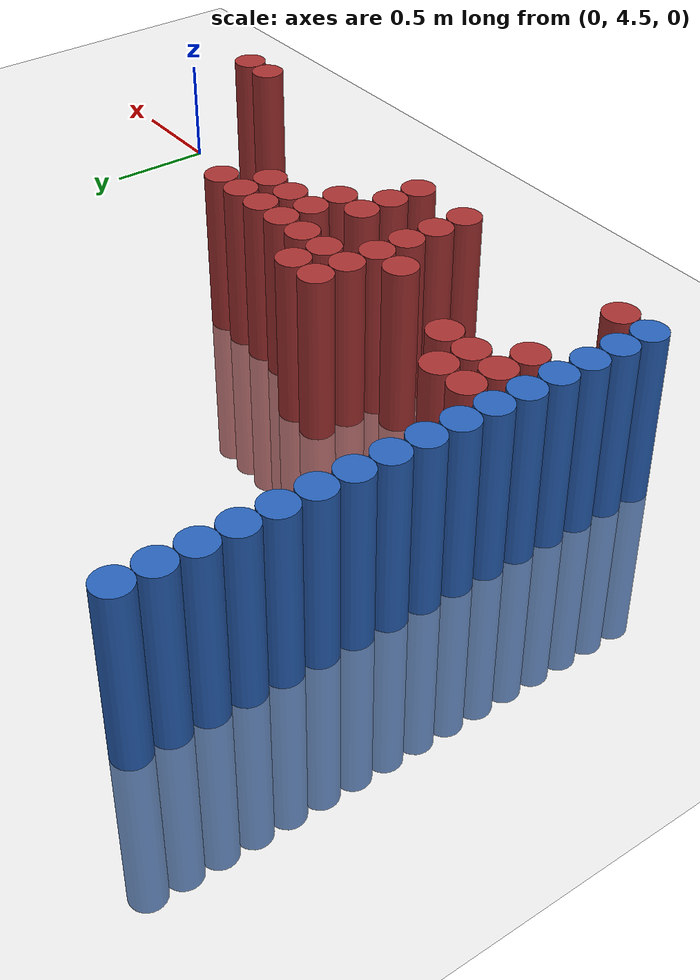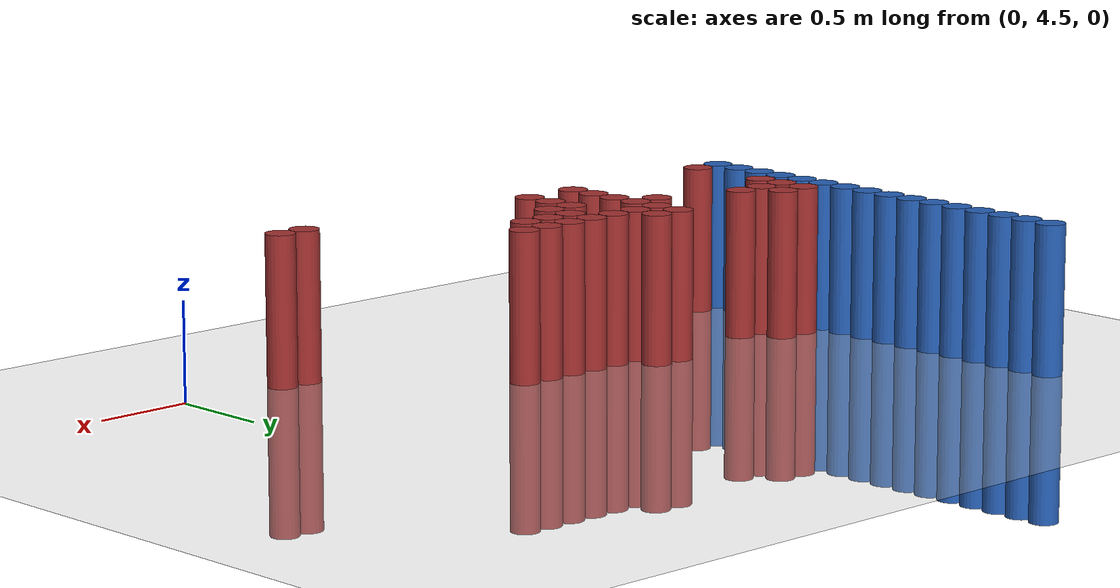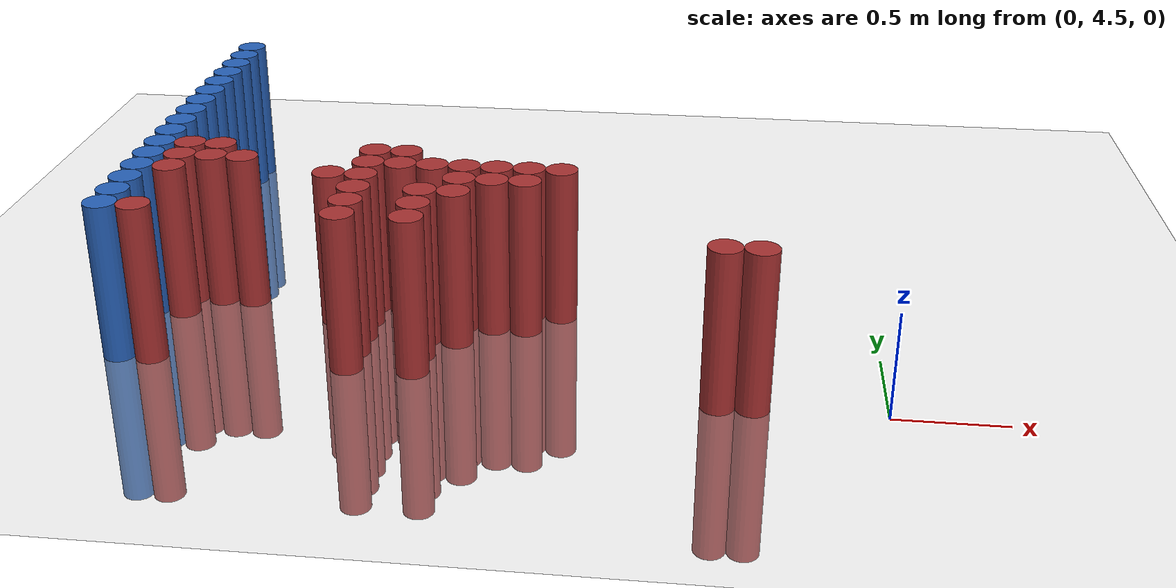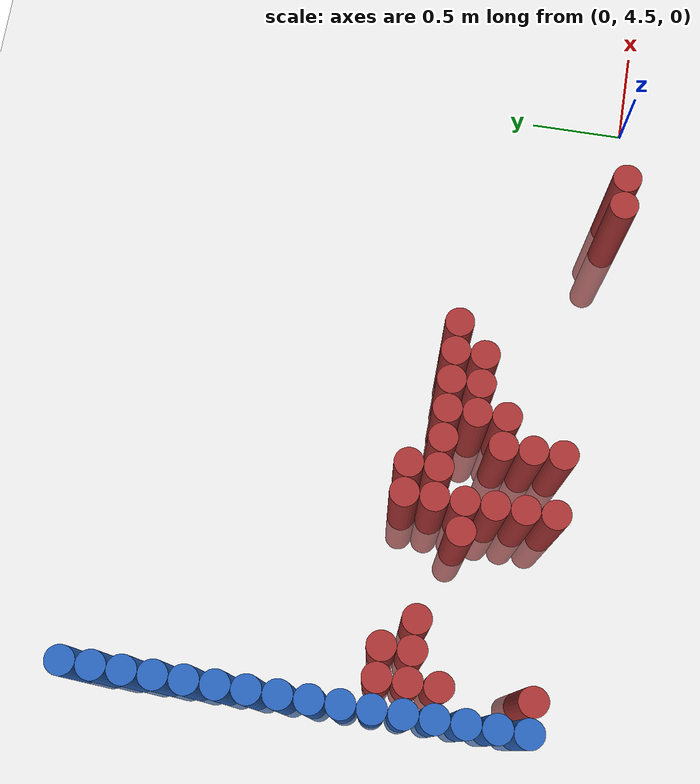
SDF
<sdf version="1.6">
 <world name="default">
  <model name="ground_plane">
   <static>1</static>
   <link name="link">
    <collision name="collision">
     <geometry><plane><normal>0 0 1</normal><size>100 100</size></plane></geometry>
     <surface><friction><ode><mu>100</mu><mu2>50</mu2></ode></friction></surface>
    </collision>
    <visual name="visual">
     <cast_shadows>0</cast_shadows>
     <geometry><plane><normal>0 0 1</normal><size>100 100</size></plane></geometry>
     <material>
      <script><uri>file://media/materials/scripts/gazebo.material</uri><name>Gazebo/Grey</name></script>
     </material>
    </visual>
   </link>
  </model>
  <model name="unit_cylinder_177">
   <static>1</static>
   <pose>-3.425000 4.675000 0.000000 0.000000 0.000000 0.000000</pose>
   <link name="link">
    <inertial>
     <mass>1</mass>
     <inertia><ixx>0.145833</ixx><ixy>0</ixy><ixz>0</ixz><iyy>0.145833</iyy><iyz>0</iyz><izz>0.125</izz></inertia>
    </inertial>
    <collision name="collision">
     <geometry><cylinder><radius>0.075000</radius><length>1.5</length></cylinder></geometry>
    </collision>
    <visual name="visual">
     <geometry><cylinder><radius>0.075000</radius><length>1.5</length></cylinder></geometry>
     <material>
      <ambient>0.152000 0.379000 0.720000 1</ambient>
      <diffuse>0.152000 0.379000 0.720000 1</diffuse>
     </material>
     <material>
      <script><name>Gazebo/Grey</name><uri>file://media/materials/scripts/gazebo.material</uri></script>
     </material>
    </visual>
   </link>
  </model>
  <model name="unit_cylinder_179">
   <static>1</static>
   <pose>-3.425000 4.825000 0.000000 0.000000 0.000000 0.000000</pose>
   <link name="link">
    <inertial>
     <mass>1</mass>
     <inertia><ixx>0.145833</ixx><ixy>0</ixy><ixz>0</ixz><iyy>0.145833</iyy><iyz>0</iyz><izz>0.125</izz></inertia>
    </inertial>
    <collision name="collision">
     <geometry><cylinder><radius>0.075000</radius><length>1.5</length></cylinder></geometry>
    </collision>
    <visual name="visual">
     <geometry><cylinder><radius>0.075000</radius><length>1.5</length></cylinder></geometry>
     <material>
      <ambient>0.152000 0.379000 0.720000 1</ambient>
      <diffuse>0.152000 0.379000 0.720000 1</diffuse>
     </material>
     <material>
      <script><name>Gazebo/Grey</name><uri>file://media/materials/scripts/gazebo.material</uri></script>
     </material>
    </visual>
   </link>
  </model>
  <model name="unit_cylinder_181">
   <static>1</static>
   <pose>-3.425000 4.975000 0.000000 0.000000 0.000000 0.000000</pose>
   <link name="link">
    <inertial>
     <mass>1</mass>
     <inertia><ixx>0.145833</ixx><ixy>0</ixy><ixz>0</ixz><iyy>0.145833</iyy><iyz>0</iyz><izz>0.125</izz></inertia>
    </inertial>
    <collision name="collision">
     <geometry><cylinder><radius>0.075000</radius><length>1.5</length></cylinder></geometry>
    </collision>
    <visual name="visual">
     <geometry><cylinder><radius>0.075000</radius><length>1.5</length></cylinder></geometry>
     <material>
      <ambient>0.152000 0.379000 0.720000 1</ambient>
      <diffuse>0.152000 0.379000 0.720000 1</diffuse>
     </material>
     <material>
      <script><name>Gazebo/Grey</name><uri>file://media/materials/scripts/gazebo.material</uri></script>
     </material>
    </visual>
   </link>
  </model>
  <model name="unit_cylinder_183">
   <static>1</static>
   <pose>-3.425000 5.125000 0.000000 0.000000 0.000000 0.000000</pose>
   <link name="link">
    <inertial>
     <mass>1</mass>
     <inertia><ixx>0.145833</ixx><ixy>0</ixy><ixz>0</ixz><iyy>0.145833</iyy><iyz>0</iyz><izz>0.125</izz></inertia>
    </inertial>
    <collision name="collision">
     <geometry><cylinder><radius>0.075000</radius><length>1.5</length></cylinder></geometry>
    </collision>
    <visual name="visual">
     <geometry><cylinder><radius>0.075000</radius><length>1.5</length></cylinder></geometry>
     <material>
      <ambient>0.152000 0.379000 0.720000 1</ambient>
      <diffuse>0.152000 0.379000 0.720000 1</diffuse>
     </material>
     <material>
      <script><name>Gazebo/Grey</name><uri>file://media/materials/scripts/gazebo.material</uri></script>
     </material>
    </visual>
   </link>
  </model>
  <model name="unit_cylinder_185">
   <static>1</static>
   <pose>-3.425000 5.275000 0.000000 0.000000 0.000000 0.000000</pose>
   <link name="link">
    <inertial>
     <mass>1</mass>
     <inertia><ixx>0.145833</ixx><ixy>0</ixy><ixz>0</ixz><iyy>0.145833</iyy><iyz>0</iyz><izz>0.125</izz></inertia>
    </inertial>
    <collision name="collision">
     <geometry><cylinder><radius>0.075000</radius><length>1.5</length></cylinder></geometry>
    </collision>
    <visual name="visual">
     <geometry><cylinder><radius>0.075000</radius><length>1.5</length></cylinder></geometry>
     <material>
      <ambient>0.152000 0.379000 0.720000 1</ambient>
      <diffuse>0.152000 0.379000 0.720000 1</diffuse>
     </material>
     <material>
      <script><name>Gazebo/Grey</name><uri>file://media/materials/scripts/gazebo.material</uri></script>
     </material>
    </visual>
   </link>
  </model>
  <model name="unit_cylinder_187">
   <static>1</static>
   <pose>-3.425000 5.425000 0.000000 0.000000 0.000000 0.000000</pose>
   <link name="link">
    <inertial>
     <mass>1</mass>
     <inertia><ixx>0.145833</ixx><ixy>0</ixy><ixz>0</ixz><iyy>0.145833</iyy><iyz>0</iyz><izz>0.125</izz></inertia>
    </inertial>
    <collision name="collision">
     <geometry><cylinder><radius>0.075000</radius><length>1.5</length></cylinder></geometry>
    </collision>
    <visual name="visual">
     <geometry><cylinder><radius>0.075000</radius><length>1.5</length></cylinder></geometry>
     <material>
      <ambient>0.152000 0.379000 0.720000 1</ambient>
      <diffuse>0.152000 0.379000 0.720000 1</diffuse>
     </material>
     <material>
      <script><name>Gazebo/Grey</name><uri>file://media/materials/scripts/gazebo.material</uri></script>
     </material>
    </visual>
   </link>
  </model>
  <model name="unit_cylinder_189">
   <static>1</static>
   <pose>-3.425000 5.575000 0.000000 0.000000 0.000000 0.000000</pose>
   <link name="link">
    <inertial>
     <mass>1</mass>
     <inertia><ixx>0.145833</ixx><ixy>0</ixy><ixz>0</ixz><iyy>0.145833</iyy><iyz>0</iyz><izz>0.125</izz></inertia>
    </inertial>
    <collision name="collision">
     <geometry><cylinder><radius>0.075000</radius><length>1.5</length></cylinder></geometry>
    </collision>
    <visual name="visual">
     <geometry><cylinder><radius>0.075000</radius><length>1.5</length></cylinder></geometry>
     <material>
      <ambient>0.152000 0.379000 0.720000 1</ambient>
      <diffuse>0.152000 0.379000 0.720000 1</diffuse>
     </material>
     <material>
      <script><name>Gazebo/Grey</name><uri>file://media/materials/scripts/gazebo.material</uri></script>
     </material>
    </visual>
   </link>
  </model>
  <model name="unit_cylinder_191">
   <static>1</static>
   <pose>-3.425000 5.725000 0.000000 0.000000 0.000000 0.000000</pose>
   <link name="link">
    <inertial>
     <mass>1</mass>
     <inertia><ixx>0.145833</ixx><ixy>0</ixy><ixz>0</ixz><iyy>0.145833</iyy><iyz>0</iyz><izz>0.125</izz></inertia>
    </inertial>
    <collision name="collision">
     <geometry><cylinder><radius>0.075000</radius><length>1.5</length></cylinder></geometry>
    </collision>
    <visual name="visual">
     <geometry><cylinder><radius>0.075000</radius><length>1.5</length></cylinder></geometry>
     <material>
      <ambient>0.152000 0.379000 0.720000 1</ambient>
      <diffuse>0.152000 0.379000 0.720000 1</diffuse>
     </material>
     <material>
      <script><name>Gazebo/Grey</name><uri>file://media/materials/scripts/gazebo.material</uri></script>
     </material>
    </visual>
   </link>
  </model>
  <model name="unit_cylinder_193">
   <static>1</static>
   <pose>-3.425000 5.875000 0.000000 0.000000 0.000000 0.000000</pose>
   <link name="link">
    <inertial>
     <mass>1</mass>
     <inertia><ixx>0.145833</ixx><ixy>0</ixy><ixz>0</ixz><iyy>0.145833</iyy><iyz>0</iyz><izz>0.125</izz></inertia>
    </inertial>
    <collision name="collision">
     <geometry><cylinder><radius>0.075000</radius><length>1.5</length></cylinder></geometry>
    </collision>
    <visual name="visual">
     <geometry><cylinder><radius>0.075000</radius><length>1.5</length></cylinder></geometry>
     <material>
      <ambient>0.152000 0.379000 0.720000 1</ambient>
      <diffuse>0.152000 0.379000 0.720000 1</diffuse>
     </material>
     <material>
      <script><name>Gazebo/Grey</name><uri>file://media/materials/scripts/gazebo.material</uri></script>
     </material>
    </visual>
   </link>
  </model>
  <model name="unit_cylinder_195">
   <static>1</static>
   <pose>-3.425000 6.025000 0.000000 0.000000 0.000000 0.000000</pose>
   <link name="link">
    <inertial>
     <mass>1</mass>
     <inertia><ixx>0.145833</ixx><ixy>0</ixy><ixz>0</ixz><iyy>0.145833</iyy><iyz>0</iyz><izz>0.125</izz></inertia>
    </inertial>
    <collision name="collision">
     <geometry><cylinder><radius>0.075000</radius><length>1.5</length></cylinder></geometry>
    </collision>
    <visual name="visual">
     <geometry><cylinder><radius>0.075000</radius><length>1.5</length></cylinder></geometry>
     <material>
      <ambient>0.152000 0.379000 0.720000 1</ambient>
      <diffuse>0.152000 0.379000 0.720000 1</diffuse>
     </material>
     <material>
      <script><name>Gazebo/Grey</name><uri>file://media/materials/scripts/gazebo.material</uri></script>
     </material>
    </visual>
   </link>
  </model>
  <model name="unit_cylinder_197">
   <static>1</static>
   <pose>-3.425000 6.175000 0.000000 0.000000 0.000000 0.000000</pose>
   <link name="link">
    <inertial>
     <mass>1</mass>
     <inertia><ixx>0.145833</ixx><ixy>0</ixy><ixz>0</ixz><iyy>0.145833</iyy><iyz>0</iyz><izz>0.125</izz></inertia>
    </inertial>
    <collision name="collision">
     <geometry><cylinder><radius>0.075000</radius><length>1.5</length></cylinder></geometry>
    </collision>
    <visual name="visual">
     <geometry><cylinder><radius>0.075000</radius><length>1.5</length></cylinder></geometry>
     <material>
      <ambient>0.152000 0.379000 0.720000 1</ambient>
      <diffuse>0.152000 0.379000 0.720000 1</diffuse>
     </material>
     <material>
      <script><name>Gazebo/Grey</name><uri>file://media/materials/scripts/gazebo.material</uri></script>
     </material>
    </visual>
   </link>
  </model>
  <model name="unit_cylinder_199">
   <static>1</static>
   <pose>-3.425000 6.325000 0.000000 0.000000 0.000000 0.000000</pose>
   <link name="link">
    <inertial>
     <mass>1</mass>
     <inertia><ixx>0.145833</ixx><ixy>0</ixy><ixz>0</ixz><iyy>0.145833</iyy><iyz>0</iyz><izz>0.125</izz></inertia>
    </inertial>
    <collision name="collision">
     <geometry><cylinder><radius>0.075000</radius><length>1.5</length></cylinder></geometry>
    </collision>
    <visual name="visual">
     <geometry><cylinder><radius>0.075000</radius><length>1.5</length></cylinder></geometry>
     <material>
      <ambient>0.152000 0.379000 0.720000 1</ambient>
      <diffuse>0.152000 0.379000 0.720000 1</diffuse>
     </material>
     <material>
      <script><name>Gazebo/Grey</name><uri>file://media/materials/scripts/gazebo.material</uri></script>
     </material>
    </visual>
   </link>
  </model>
  <model name="unit_cylinder_201">
   <static>1</static>
   <pose>-3.425000 6.475000 0.000000 0.000000 0.000000 0.000000</pose>
   <link name="link">
    <inertial>
     <mass>1</mass>
     <inertia><ixx>0.145833</ixx><ixy>0</ixy><ixz>0</ixz><iyy>0.145833</iyy><iyz>0</iyz><izz>0.125</izz></inertia>
    </inertial>
    <collision name="collision">
     <geometry><cylinder><radius>0.075000</radius><length>1.5</length></cylinder></geometry>
    </collision>
    <visual name="visual">
     <geometry><cylinder><radius>0.075000</radius><length>1.5</length></cylinder></geometry>
     <material>
      <ambient>0.152000 0.379000 0.720000 1</ambient>
      <diffuse>0.152000 0.379000 0.720000 1</diffuse>
     </material>
     <material>
      <script><name>Gazebo/Grey</name><uri>file://media/materials/scripts/gazebo.material</uri></script>
     </material>
    </visual>
   </link>
  </model>
  <model name="unit_cylinder_203">
   <static>1</static>
   <pose>-3.425000 6.625000 0.000000 0.000000 0.000000 0.000000</pose>
   <link name="link">
    <inertial>
     <mass>1</mass>
     <inertia><ixx>0.145833</ixx><ixy>0</ixy><ixz>0</ixz><iyy>0.145833</iyy><iyz>0</iyz><izz>0.125</izz></inertia>
    </inertial>
    <collision name="collision">
     <geometry><cylinder><radius>0.075000</radius><length>1.5</length></cylinder></geometry>
    </collision>
    <visual name="visual">
     <geometry><cylinder><radius>0.075000</radius><length>1.5</length></cylinder></geometry>
     <material>
      <ambient>0.152000 0.379000 0.720000 1</ambient>
      <diffuse>0.152000 0.379000 0.720000 1</diffuse>
     </material>
     <material>
      <script><name>Gazebo/Grey</name><uri>file://media/materials/scripts/gazebo.material</uri></script>
     </material>
    </visual>
   </link>
  </model>
  <model name="unit_cylinder_205">
   <static>1</static>
   <pose>-3.425000 6.775000 0.000000 0.000000 0.000000 0.000000</pose>
   <link name="link">
    <inertial>
     <mass>1</mass>
     <inertia><ixx>0.145833</ixx><ixy>0</ixy><ixz>0</ixz><iyy>0.145833</iyy><iyz>0</iyz><izz>0.125</izz></inertia>
    </inertial>
    <collision name="collision">
     <geometry><cylinder><radius>0.075000</radius><length>1.5</length></cylinder></geometry>
    </collision>
    <visual name="visual">
     <geometry><cylinder><radius>0.075000</radius><length>1.5</length></cylinder></geometry>
     <material>
      <ambient>0.152000 0.379000 0.720000 1</ambient>
      <diffuse>0.152000 0.379000 0.720000 1</diffuse>
     </material>
     <material>
      <script><name>Gazebo/Grey</name><uri>file://media/materials/scripts/gazebo.material</uri></script>
     </material>
    </visual>
   </link>
  </model>
  <model name="unit_cylinder_207">
   <static>1</static>
   <pose>-3.425000 6.925000 0.000000 0.000000 0.000000 0.000000</pose>
   <link name="link">
    <inertial>
     <mass>1</mass>
     <inertia><ixx>0.145833</ixx><ixy>0</ixy><ixz>0</ixz><iyy>0.145833</iyy><iyz>0</iyz><izz>0.125</izz></inertia>
    </inertial>
    <collision name="collision">
     <geometry><cylinder><radius>0.075000</radius><length>1.5</length></cylinder></geometry>
    </collision>
    <visual name="visual">
     <geometry><cylinder><radius>0.075000</radius><length>1.5</length></cylinder></geometry>
     <material>
      <ambient>0.152000 0.379000 0.720000 1</ambient>
      <diffuse>0.152000 0.379000 0.720000 1</diffuse>
     </material>
     <material>
      <script><name>Gazebo/Grey</name><uri>file://media/materials/scripts/gazebo.material</uri></script>
     </material>
    </visual>
   </link>
  </model>
  <model name="unit_cylinder_252">
   <static>1</static>
   <pose>-3.425000 4.675000 0.000000 0.000000 0.000000 0.000000</pose>
   <link name="link">
    <inertial>
     <mass>1</mass>
     <inertia><ixx>0.145833</ixx><ixy>0</ixy><ixz>0</ixz><iyy>0.145833</iyy><iyz>0</iyz><izz>0.125</izz></inertia>
    </inertial>
    <collision name="collision">
     <geometry><cylinder><radius>0.075000</radius><length>1.5</length></cylinder></geometry>
    </collision>
    <visual name="visual">
     <geometry><cylinder><radius>0.075000</radius><length>1.5</length></cylinder></geometry>
     <material>
      <ambient>0.152000 0.379000 0.720000 1</ambient>
      <diffuse>0.152000 0.379000 0.720000 1</diffuse>
     </material>
     <material>
      <script><name>Gazebo/Grey</name><uri>file://media/materials/scripts/gazebo.material</uri></script>
     </material>
    </visual>
   </link>
  </model>
  <model name="unit_cylinder_253">
   <static>1</static>
   <pose>-3.425000 4.825000 0.000000 0.000000 0.000000 0.000000</pose>
   <link name="link">
    <inertial>
     <mass>1</mass>
     <inertia><ixx>0.145833</ixx><ixy>0</ixy><ixz>0</ixz><iyy>0.145833</iyy><iyz>0</iyz><izz>0.125</izz></inertia>
    </inertial>
    <collision name="collision">
     <geometry><cylinder><radius>0.075000</radius><length>1.5</length></cylinder></geometry>
    </collision>
    <visual name="visual">
     <geometry><cylinder><radius>0.075000</radius><length>1.5</length></cylinder></geometry>
     <material>
      <ambient>0.152000 0.379000 0.720000 1</ambient>
      <diffuse>0.152000 0.379000 0.720000 1</diffuse>
     </material>
     <material>
      <script><name>Gazebo/Grey</name><uri>file://media/materials/scripts/gazebo.material</uri></script>
     </material>
    </visual>
   </link>
  </model>
  <model name="unit_cylinder_254">
   <static>1</static>
   <pose>-3.425000 4.975000 0.000000 0.000000 0.000000 0.000000</pose>
   <link name="link">
    <inertial>
     <mass>1</mass>
     <inertia><ixx>0.145833</ixx><ixy>0</ixy><ixz>0</ixz><iyy>0.145833</iyy><iyz>0</iyz><izz>0.125</izz></inertia>
    </inertial>
    <collision name="collision">
     <geometry><cylinder><radius>0.075000</radius><length>1.5</length></cylinder></geometry>
    </collision>
    <visual name="visual">
     <geometry><cylinder><radius>0.075000</radius><length>1.5</length></cylinder></geometry>
     <material>
      <ambient>0.152000 0.379000 0.720000 1</ambient>
      <diffuse>0.152000 0.379000 0.720000 1</diffuse>
     </material>
     <material>
      <script><name>Gazebo/Grey</name><uri>file://media/materials/scripts/gazebo.material</uri></script>
     </material>
    </visual>
   </link>
  </model>
  <model name="unit_cylinder_255">
   <static>1</static>
   <pose>-3.425000 5.125000 0.000000 0.000000 0.000000 0.000000</pose>
   <link name="link">
    <inertial>
     <mass>1</mass>
     <inertia><ixx>0.145833</ixx><ixy>0</ixy><ixz>0</ixz><iyy>0.145833</iyy><iyz>0</iyz><izz>0.125</izz></inertia>
    </inertial>
    <collision name="collision">
     <geometry><cylinder><radius>0.075000</radius><length>1.5</length></cylinder></geometry>
    </collision>
    <visual name="visual">
     <geometry><cylinder><radius>0.075000</radius><length>1.5</length></cylinder></geometry>
     <material>
      <ambient>0.152000 0.379000 0.720000 1</ambient>
      <diffuse>0.152000 0.379000 0.720000 1</diffuse>
     </material>
     <material>
      <script><name>Gazebo/Grey</name><uri>file://media/materials/scripts/gazebo.material</uri></script>
     </material>
    </visual>
   </link>
  </model>
  <model name="unit_cylinder_256">
   <static>1</static>
   <pose>-3.425000 5.275000 0.000000 0.000000 0.000000 0.000000</pose>
   <link name="link">
    <inertial>
     <mass>1</mass>
     <inertia><ixx>0.145833</ixx><ixy>0</ixy><ixz>0</ixz><iyy>0.145833</iyy><iyz>0</iyz><izz>0.125</izz></inertia>
    </inertial>
    <collision name="collision">
     <geometry><cylinder><radius>0.075000</radius><length>1.5</length></cylinder></geometry>
    </collision>
    <visual name="visual">
     <geometry><cylinder><radius>0.075000</radius><length>1.5</length></cylinder></geometry>
     <material>
      <ambient>0.152000 0.379000 0.720000 1</ambient>
      <diffuse>0.152000 0.379000 0.720000 1</diffuse>
     </material>
     <material>
      <script><name>Gazebo/Grey</name><uri>file://media/materials/scripts/gazebo.material</uri></script>
     </material>
    </visual>
   </link>
  </model>
  <model name="unit_cylinder_257">
   <static>1</static>
   <pose>-3.425000 5.425000 0.000000 0.000000 0.000000 0.000000</pose>
   <link name="link">
    <inertial>
     <mass>1</mass>
     <inertia><ixx>0.145833</ixx><ixy>0</ixy><ixz>0</ixz><iyy>0.145833</iyy><iyz>0</iyz><izz>0.125</izz></inertia>
    </inertial>
    <collision name="collision">
     <geometry><cylinder><radius>0.075000</radius><length>1.5</length></cylinder></geometry>
    </collision>
    <visual name="visual">
     <geometry><cylinder><radius>0.075000</radius><length>1.5</length></cylinder></geometry>
     <material>
      <ambient>0.152000 0.379000 0.720000 1</ambient>
      <diffuse>0.152000 0.379000 0.720000 1</diffuse>
     </material>
     <material>
      <script><name>Gazebo/Grey</name><uri>file://media/materials/scripts/gazebo.material</uri></script>
     </material>
    </visual>
   </link>
  </model>
  <model name="unit_cylinder_282">
   <static>1</static>
   <pose>-3.275000 4.675000 0.000000 0.000000 0.000000 0.000000</pose>
   <link name="link">
    <inertial>
     <mass>1</mass>
     <inertia><ixx>0.145833</ixx><ixy>0</ixy><ixz>0</ixz><iyy>0.145833</iyy><iyz>0</iyz><izz>0.125</izz></inertia>
    </inertial>
    <collision name="collision">
     <geometry><cylinder><radius>0.075000</radius><length>1.5</length></cylinder></geometry>
    </collision>
    <visual name="visual">
     <geometry><cylinder><radius>0.075000</radius><length>1.5</length></cylinder></geometry>
     <material>
      <ambient>0.648000 0.192000 0.192000 1</ambient>
      <diffuse>0.648000 0.192000 0.192000 1</diffuse>
     </material>
     <material>
      <script><name>Gazebo/Grey</name><uri>file://media/materials/scripts/gazebo.material</uri></script>
     </material>
    </visual>
   </link>
  </model>
  <model name="unit_cylinder_283">
   <static>1</static>
   <pose>-3.275000 5.125000 0.000000 0.000000 0.000000 0.000000</pose>
   <link name="link">
    <inertial>
     <mass>1</mass>
     <inertia><ixx>0.145833</ixx><ixy>0</ixy><ixz>0</ixz><iyy>0.145833</iyy><iyz>0</iyz><izz>0.125</izz></inertia>
    </inertial>
    <collision name="collision">
     <geometry><cylinder><radius>0.075000</radius><length>1.5</length></cylinder></geometry>
    </collision>
    <visual name="visual">
     <geometry><cylinder><radius>0.075000</radius><length>1.5</length></cylinder></geometry>
     <material>
      <ambient>0.648000 0.192000 0.192000 1</ambient>
      <diffuse>0.648000 0.192000 0.192000 1</diffuse>
     </material>
     <material>
      <script><name>Gazebo/Grey</name><uri>file://media/materials/scripts/gazebo.material</uri></script>
     </material>
    </visual>
   </link>
  </model>
  <model name="unit_cylinder_284">
   <static>1</static>
   <pose>-3.275000 5.275000 0.000000 0.000000 0.000000 0.000000</pose>
   <link name="link">
    <inertial>
     <mass>1</mass>
     <inertia><ixx>0.145833</ixx><ixy>0</ixy><ixz>0</ixz><iyy>0.145833</iyy><iyz>0</iyz><izz>0.125</izz></inertia>
    </inertial>
    <collision name="collision">
     <geometry><cylinder><radius>0.075000</radius><length>1.5</length></cylinder></geometry>
    </collision>
    <visual name="visual">
     <geometry><cylinder><radius>0.075000</radius><length>1.5</length></cylinder></geometry>
     <material>
      <ambient>0.648000 0.192000 0.192000 1</ambient>
      <diffuse>0.648000 0.192000 0.192000 1</diffuse>
     </material>
     <material>
      <script><name>Gazebo/Grey</name><uri>file://media/materials/scripts/gazebo.material</uri></script>
     </material>
    </visual>
   </link>
  </model>
  <model name="unit_cylinder_285">
   <static>1</static>
   <pose>-3.275000 5.425000 0.000000 0.000000 0.000000 0.000000</pose>
   <link name="link">
    <inertial>
     <mass>1</mass>
     <inertia><ixx>0.145833</ixx><ixy>0</ixy><ixz>0</ixz><iyy>0.145833</iyy><iyz>0</iyz><izz>0.125</izz></inertia>
    </inertial>
    <collision name="collision">
     <geometry><cylinder><radius>0.075000</radius><length>1.5</length></cylinder></geometry>
    </collision>
    <visual name="visual">
     <geometry><cylinder><radius>0.075000</radius><length>1.5</length></cylinder></geometry>
     <material>
      <ambient>0.648000 0.192000 0.192000 1</ambient>
      <diffuse>0.648000 0.192000 0.192000 1</diffuse>
     </material>
     <material>
      <script><name>Gazebo/Grey</name><uri>file://media/materials/scripts/gazebo.material</uri></script>
     </material>
    </visual>
   </link>
  </model>
  <model name="unit_cylinder_300">
   <static>1</static>
   <pose>-3.125000 5.275000 0.000000 0.000000 0.000000 0.000000</pose>
   <link name="link">
    <inertial>
     <mass>1</mass>
     <inertia><ixx>0.145833</ixx><ixy>0</ixy><ixz>0</ixz><iyy>0.145833</iyy><iyz>0</iyz><izz>0.125</izz></inertia>
    </inertial>
    <collision name="collision">
     <geometry><cylinder><radius>0.075000</radius><length>1.5</length></cylinder></geometry>
    </collision>
    <visual name="visual">
     <geometry><cylinder><radius>0.075000</radius><length>1.5</length></cylinder></geometry>
     <material>
      <ambient>0.648000 0.192000 0.192000 1</ambient>
      <diffuse>0.648000 0.192000 0.192000 1</diffuse>
     </material>
     <material>
      <script><name>Gazebo/Grey</name><uri>file://media/materials/scripts/gazebo.material</uri></script>
     </material>
    </visual>
   </link>
  </model>
  <model name="unit_cylinder_301">
   <static>1</static>
   <pose>-3.125000 5.425000 0.000000 0.000000 0.000000 0.000000</pose>
   <link name="link">
    <inertial>
     <mass>1</mass>
     <inertia><ixx>0.145833</ixx><ixy>0</ixy><ixz>0</ixz><iyy>0.145833</iyy><iyz>0</iyz><izz>0.125</izz></inertia>
    </inertial>
    <collision name="collision">
     <geometry><cylinder><radius>0.075000</radius><length>1.5</length></cylinder></geometry>
    </collision>
    <visual name="visual">
     <geometry><cylinder><radius>0.075000</radius><length>1.5</length></cylinder></geometry>
     <material>
      <ambient>0.648000 0.192000 0.192000 1</ambient>
      <diffuse>0.648000 0.192000 0.192000 1</diffuse>
     </material>
     <material>
      <script><name>Gazebo/Grey</name><uri>file://media/materials/scripts/gazebo.material</uri></script>
     </material>
    </visual>
   </link>
  </model>
  <model name="unit_cylinder_308">
   <static>1</static>
   <pose>-2.975000 5.275000 0.000000 0.000000 0.000000 0.000000</pose>
   <link name="link">
    <inertial>
     <mass>1</mass>
     <inertia><ixx>0.145833</ixx><ixy>0</ixy><ixz>0</ixz><iyy>0.145833</iyy><iyz>0</iyz><izz>0.125</izz></inertia>
    </inertial>
    <collision name="collision">
     <geometry><cylinder><radius>0.075000</radius><length>1.5</length></cylinder></geometry>
    </collision>
    <visual name="visual">
     <geometry><cylinder><radius>0.075000</radius><length>1.5</length></cylinder></geometry>
     <material>
      <ambient>0.648000 0.192000 0.192000 1</ambient>
      <diffuse>0.648000 0.192000 0.192000 1</diffuse>
     </material>
     <material>
      <script><name>Gazebo/Grey</name><uri>file://media/materials/scripts/gazebo.material</uri></script>
     </material>
    </visual>
   </link>
  </model>
  <model name="unit_cylinder_313">
   <static>1</static>
   <pose>-2.525000 5.125000 0.000000 0.000000 0.000000 0.000000</pose>
   <link name="link">
    <inertial>
     <mass>1</mass>
     <inertia><ixx>0.145833</ixx><ixy>0</ixy><ixz>0</ixz><iyy>0.145833</iyy><iyz>0</iyz><izz>0.125</izz></inertia>
    </inertial>
    <collision name="collision">
     <geometry><cylinder><radius>0.075000</radius><length>1.5</length></cylinder></geometry>
    </collision>
    <visual name="visual">
     <geometry><cylinder><radius>0.075000</radius><length>1.5</length></cylinder></geometry>
     <material>
      <ambient>0.648000 0.192000 0.192000 1</ambient>
      <diffuse>0.648000 0.192000 0.192000 1</diffuse>
     </material>
     <material>
      <script><name>Gazebo/Grey</name><uri>file://media/materials/scripts/gazebo.material</uri></script>
     </material>
    </visual>
   </link>
  </model>
  <model name="unit_cylinder_322">
   <static>1</static>
   <pose>-2.375000 4.675000 0.000000 0.000000 0.000000 0.000000</pose>
   <link name="link">
    <inertial>
     <mass>1</mass>
     <inertia><ixx>0.145833</ixx><ixy>0</ixy><ixz>0</ixz><iyy>0.145833</iyy><iyz>0</iyz><izz>0.125</izz></inertia>
    </inertial>
    <collision name="collision">
     <geometry><cylinder><radius>0.075000</radius><length>1.5</length></cylinder></geometry>
    </collision>
    <visual name="visual">
     <geometry><cylinder><radius>0.075000</radius><length>1.5</length></cylinder></geometry>
     <material>
      <ambient>0.648000 0.192000 0.192000 1</ambient>
      <diffuse>0.648000 0.192000 0.192000 1</diffuse>
     </material>
     <material>
      <script><name>Gazebo/Grey</name><uri>file://media/materials/scripts/gazebo.material</uri></script>
     </material>
    </visual>
   </link>
  </model>
  <model name="unit_cylinder_323">
   <static>1</static>
   <pose>-2.375000 4.825000 0.000000 0.000000 0.000000 0.000000</pose>
   <link name="link">
    <inertial>
     <mass>1</mass>
     <inertia><ixx>0.145833</ixx><ixy>0</ixy><ixz>0</ixz><iyy>0.145833</iyy><iyz>0</iyz><izz>0.125</izz></inertia>
    </inertial>
    <collision name="collision">
     <geometry><cylinder><radius>0.075000</radius><length>1.5</length></cylinder></geometry>
    </collision>
    <visual name="visual">
     <geometry><cylinder><radius>0.075000</radius><length>1.5</length></cylinder></geometry>
     <material>
      <ambient>0.648000 0.192000 0.192000 1</ambient>
      <diffuse>0.648000 0.192000 0.192000 1</diffuse>
     </material>
     <material>
      <script><name>Gazebo/Grey</name><uri>file://media/materials/scripts/gazebo.material</uri></script>
     </material>
    </visual>
   </link>
  </model>
  <model name="unit_cylinder_324">
   <static>1</static>
   <pose>-2.375000 4.975000 0.000000 0.000000 0.000000 0.000000</pose>
   <link name="link">
    <inertial>
     <mass>1</mass>
     <inertia><ixx>0.145833</ixx><ixy>0</ixy><ixz>0</ixz><iyy>0.145833</iyy><iyz>0</iyz><izz>0.125</izz></inertia>
    </inertial>
    <collision name="collision">
     <geometry><cylinder><radius>0.075000</radius><length>1.5</length></cylinder></geometry>
    </collision>
    <visual name="visual">
     <geometry><cylinder><radius>0.075000</radius><length>1.5</length></cylinder></geometry>
     <material>
      <ambient>0.648000 0.192000 0.192000 1</ambient>
      <diffuse>0.648000 0.192000 0.192000 1</diffuse>
     </material>
     <material>
      <script><name>Gazebo/Grey</name><uri>file://media/materials/scripts/gazebo.material</uri></script>
     </material>
    </visual>
   </link>
  </model>
  <model name="unit_cylinder_325">
   <static>1</static>
   <pose>-2.375000 5.125000 0.000000 0.000000 0.000000 0.000000</pose>
   <link name="link">
    <inertial>
     <mass>1</mass>
     <inertia><ixx>0.145833</ixx><ixy>0</ixy><ixz>0</ixz><iyy>0.145833</iyy><iyz>0</iyz><izz>0.125</izz></inertia>
    </inertial>
    <collision name="collision">
     <geometry><cylinder><radius>0.075000</radius><length>1.5</length></cylinder></geometry>
    </collision>
    <visual name="visual">
     <geometry><cylinder><radius>0.075000</radius><length>1.5</length></cylinder></geometry>
     <material>
      <ambient>0.648000 0.192000 0.192000 1</ambient>
      <diffuse>0.648000 0.192000 0.192000 1</diffuse>
     </material>
     <material>
      <script><name>Gazebo/Grey</name><uri>file://media/materials/scripts/gazebo.material</uri></script>
     </material>
    </visual>
   </link>
  </model>
  <model name="unit_cylinder_326">
   <static>1</static>
   <pose>-2.375000 5.275000 0.000000 0.000000 0.000000 0.000000</pose>
   <link name="link">
    <inertial>
     <mass>1</mass>
     <inertia><ixx>0.145833</ixx><ixy>0</ixy><ixz>0</ixz><iyy>0.145833</iyy><iyz>0</iyz><izz>0.125</izz></inertia>
    </inertial>
    <collision name="collision">
     <geometry><cylinder><radius>0.075000</radius><length>1.5</length></cylinder></geometry>
    </collision>
    <visual name="visual">
     <geometry><cylinder><radius>0.075000</radius><length>1.5</length></cylinder></geometry>
     <material>
      <ambient>0.648000 0.192000 0.192000 1</ambient>
      <diffuse>0.648000 0.192000 0.192000 1</diffuse>
     </material>
     <material>
      <script><name>Gazebo/Grey</name><uri>file://media/materials/scripts/gazebo.material</uri></script>
     </material>
    </visual>
   </link>
  </model>
  <model name="unit_cylinder_327">
   <static>1</static>
   <pose>-2.375000 5.425000 0.000000 0.000000 0.000000 0.000000</pose>
   <link name="link">
    <inertial>
     <mass>1</mass>
     <inertia><ixx>0.145833</ixx><ixy>0</ixy><ixz>0</ixz><iyy>0.145833</iyy><iyz>0</iyz><izz>0.125</izz></inertia>
    </inertial>
    <collision name="collision">
     <geometry><cylinder><radius>0.075000</radius><length>1.5</length></cylinder></geometry>
    </collision>
    <visual name="visual">
     <geometry><cylinder><radius>0.075000</radius><length>1.5</length></cylinder></geometry>
     <material>
      <ambient>0.648000 0.192000 0.192000 1</ambient>
      <diffuse>0.648000 0.192000 0.192000 1</diffuse>
     </material>
     <material>
      <script><name>Gazebo/Grey</name><uri>file://media/materials/scripts/gazebo.material</uri></script>
     </material>
    </visual>
   </link>
  </model>
  <model name="unit_cylinder_336">
   <static>1</static>
   <pose>-2.225000 5.275000 0.000000 0.000000 0.000000 0.000000</pose>
   <link name="link">
    <inertial>
     <mass>1</mass>
     <inertia><ixx>0.145833</ixx><ixy>0</ixy><ixz>0</ixz><iyy>0.145833</iyy><iyz>0</iyz><izz>0.125</izz></inertia>
    </inertial>
    <collision name="collision">
     <geometry><cylinder><radius>0.075000</radius><length>1.5</length></cylinder></geometry>
    </collision>
    <visual name="visual">
     <geometry><cylinder><radius>0.075000</radius><length>1.5</length></cylinder></geometry>
     <material>
      <ambient>0.648000 0.192000 0.192000 1</ambient>
      <diffuse>0.648000 0.192000 0.192000 1</diffuse>
     </material>
     <material>
      <script><name>Gazebo/Grey</name><uri>file://media/materials/scripts/gazebo.material</uri></script>
     </material>
    </visual>
   </link>
  </model>
  <model name="unit_cylinder_337">
   <static>1</static>
   <pose>-2.225000 5.425000 0.000000 0.000000 0.000000 0.000000</pose>
   <link name="link">
    <inertial>
     <mass>1</mass>
     <inertia><ixx>0.145833</ixx><ixy>0</ixy><ixz>0</ixz><iyy>0.145833</iyy><iyz>0</iyz><izz>0.125</izz></inertia>
    </inertial>
    <collision name="collision">
     <geometry><cylinder><radius>0.075000</radius><length>1.5</length></cylinder></geometry>
    </collision>
    <visual name="visual">
     <geometry><cylinder><radius>0.075000</radius><length>1.5</length></cylinder></geometry>
     <material>
      <ambient>0.648000 0.192000 0.192000 1</ambient>
      <diffuse>0.648000 0.192000 0.192000 1</diffuse>
     </material>
     <material>
      <script><name>Gazebo/Grey</name><uri>file://media/materials/scripts/gazebo.material</uri></script>
     </material>
    </visual>
   </link>
  </model>
  <model name="unit_cylinder_343">
   <static>1</static>
   <pose>-2.075000 4.675000 0.000000 0.000000 0.000000 0.000000</pose>
   <link name="link">
    <inertial>
     <mass>1</mass>
     <inertia><ixx>0.145833</ixx><ixy>0</ixy><ixz>0</ixz><iyy>0.145833</iyy><iyz>0</iyz><izz>0.125</izz></inertia>
    </inertial>
    <collision name="collision">
     <geometry><cylinder><radius>0.075000</radius><length>1.5</length></cylinder></geometry>
    </collision>
    <visual name="visual">
     <geometry><cylinder><radius>0.075000</radius><length>1.5</length></cylinder></geometry>
     <material>
      <ambient>0.648000 0.192000 0.192000 1</ambient>
      <diffuse>0.648000 0.192000 0.192000 1</diffuse>
     </material>
     <material>
      <script><name>Gazebo/Grey</name><uri>file://media/materials/scripts/gazebo.material</uri></script>
     </material>
    </visual>
   </link>
  </model>
  <model name="unit_cylinder_344">
   <static>1</static>
   <pose>-2.075000 4.825000 0.000000 0.000000 0.000000 0.000000</pose>
   <link name="link">
    <inertial>
     <mass>1</mass>
     <inertia><ixx>0.145833</ixx><ixy>0</ixy><ixz>0</ixz><iyy>0.145833</iyy><iyz>0</iyz><izz>0.125</izz></inertia>
    </inertial>
    <collision name="collision">
     <geometry><cylinder><radius>0.075000</radius><length>1.5</length></cylinder></geometry>
    </collision>
    <visual name="visual">
     <geometry><cylinder><radius>0.075000</radius><length>1.5</length></cylinder></geometry>
     <material>
      <ambient>0.648000 0.192000 0.192000 1</ambient>
      <diffuse>0.648000 0.192000 0.192000 1</diffuse>
     </material>
     <material>
      <script><name>Gazebo/Grey</name><uri>file://media/materials/scripts/gazebo.material</uri></script>
     </material>
    </visual>
   </link>
  </model>
  <model name="unit_cylinder_345">
   <static>1</static>
   <pose>-2.075000 4.975000 0.000000 0.000000 0.000000 0.000000</pose>
   <link name="link">
    <inertial>
     <mass>1</mass>
     <inertia><ixx>0.145833</ixx><ixy>0</ixy><ixz>0</ixz><iyy>0.145833</iyy><iyz>0</iyz><izz>0.125</izz></inertia>
    </inertial>
    <collision name="collision">
     <geometry><cylinder><radius>0.075000</radius><length>1.5</length></cylinder></geometry>
    </collision>
    <visual name="visual">
     <geometry><cylinder><radius>0.075000</radius><length>1.5</length></cylinder></geometry>
     <material>
      <ambient>0.648000 0.192000 0.192000 1</ambient>
      <diffuse>0.648000 0.192000 0.192000 1</diffuse>
     </material>
     <material>
      <script><name>Gazebo/Grey</name><uri>file://media/materials/scripts/gazebo.material</uri></script>
     </material>
    </visual>
   </link>
  </model>
  <model name="unit_cylinder_346">
   <static>1</static>
   <pose>-2.075000 5.275000 0.000000 0.000000 0.000000 0.000000</pose>
   <link name="link">
    <inertial>
     <mass>1</mass>
     <inertia><ixx>0.145833</ixx><ixy>0</ixy><ixz>0</ixz><iyy>0.145833</iyy><iyz>0</iyz><izz>0.125</izz></inertia>
    </inertial>
    <collision name="collision">
     <geometry><cylinder><radius>0.075000</radius><length>1.5</length></cylinder></geometry>
    </collision>
    <visual name="visual">
     <geometry><cylinder><radius>0.075000</radius><length>1.5</length></cylinder></geometry>
     <material>
      <ambient>0.648000 0.192000 0.192000 1</ambient>
      <diffuse>0.648000 0.192000 0.192000 1</diffuse>
     </material>
     <material>
      <script><name>Gazebo/Grey</name><uri>file://media/materials/scripts/gazebo.material</uri></script>
     </material>
    </visual>
   </link>
  </model>
  <model name="unit_cylinder_356">
   <static>1</static>
   <pose>-1.925000 4.975000 0.000000 0.000000 0.000000 0.000000</pose>
   <link name="link">
    <inertial>
     <mass>1</mass>
     <inertia><ixx>0.145833</ixx><ixy>0</ixy><ixz>0</ixz><iyy>0.145833</iyy><iyz>0</iyz><izz>0.125</izz></inertia>
    </inertial>
    <collision name="collision">
     <geometry><cylinder><radius>0.075000</radius><length>1.5</length></cylinder></geometry>
    </collision>
    <visual name="visual">
     <geometry><cylinder><radius>0.075000</radius><length>1.5</length></cylinder></geometry>
     <material>
      <ambient>0.648000 0.192000 0.192000 1</ambient>
      <diffuse>0.648000 0.192000 0.192000 1</diffuse>
     </material>
     <material>
      <script><name>Gazebo/Grey</name><uri>file://media/materials/scripts/gazebo.material</uri></script>
     </material>
    </visual>
   </link>
  </model>
  <model name="unit_cylinder_357">
   <static>1</static>
   <pose>-1.925000 5.125000 0.000000 0.000000 0.000000 0.000000</pose>
   <link name="link">
    <inertial>
     <mass>1</mass>
     <inertia><ixx>0.145833</ixx><ixy>0</ixy><ixz>0</ixz><iyy>0.145833</iyy><iyz>0</iyz><izz>0.125</izz></inertia>
    </inertial>
    <collision name="collision">
     <geometry><cylinder><radius>0.075000</radius><length>1.5</length></cylinder></geometry>
    </collision>
    <visual name="visual">
     <geometry><cylinder><radius>0.075000</radius><length>1.5</length></cylinder></geometry>
     <material>
      <ambient>0.648000 0.192000 0.192000 1</ambient>
      <diffuse>0.648000 0.192000 0.192000 1</diffuse>
     </material>
     <material>
      <script><name>Gazebo/Grey</name><uri>file://media/materials/scripts/gazebo.material</uri></script>
     </material>
    </visual>
   </link>
  </model>
  <model name="unit_cylinder_358">
   <static>1</static>
   <pose>-1.925000 5.275000 0.000000 0.000000 0.000000 0.000000</pose>
   <link name="link">
    <inertial>
     <mass>1</mass>
     <inertia><ixx>0.145833</ixx><ixy>0</ixy><ixz>0</ixz><iyy>0.145833</iyy><iyz>0</iyz><izz>0.125</izz></inertia>
    </inertial>
    <collision name="collision">
     <geometry><cylinder><radius>0.075000</radius><length>1.5</length></cylinder></geometry>
    </collision>
    <visual name="visual">
     <geometry><cylinder><radius>0.075000</radius><length>1.5</length></cylinder></geometry>
     <material>
      <ambient>0.648000 0.192000 0.192000 1</ambient>
      <diffuse>0.648000 0.192000 0.192000 1</diffuse>
     </material>
     <material>
      <script><name>Gazebo/Grey</name><uri>file://media/materials/scripts/gazebo.material</uri></script>
     </material>
    </visual>
   </link>
  </model>
  <model name="unit_cylinder_364">
   <static>1</static>
   <pose>-1.775000 5.125000 0.000000 0.000000 0.000000 0.000000</pose>
   <link name="link">
    <inertial>
     <mass>1</mass>
     <inertia><ixx>0.145833</ixx><ixy>0</ixy><ixz>0</ixz><iyy>0.145833</iyy><iyz>0</iyz><izz>0.125</izz></inertia>
    </inertial>
    <collision name="collision">
     <geometry><cylinder><radius>0.075000</radius><length>1.5</length></cylinder></geometry>
    </collision>
    <visual name="visual">
     <geometry><cylinder><radius>0.075000</radius><length>1.5</length></cylinder></geometry>
     <material>
      <ambient>0.648000 0.192000 0.192000 1</ambient>
      <diffuse>0.648000 0.192000 0.192000 1</diffuse>
     </material>
     <material>
      <script><name>Gazebo/Grey</name><uri>file://media/materials/scripts/gazebo.material</uri></script>
     </material>
    </visual>
   </link>
  </model>
  <model name="unit_cylinder_365">
   <static>1</static>
   <pose>-1.775000 5.275000 0.000000 0.000000 0.000000 0.000000</pose>
   <link name="link">
    <inertial>
     <mass>1</mass>
     <inertia><ixx>0.145833</ixx><ixy>0</ixy><ixz>0</ixz><iyy>0.145833</iyy><iyz>0</iyz><izz>0.125</izz></inertia>
    </inertial>
    <collision name="collision">
     <geometry><cylinder><radius>0.075000</radius><length>1.5</length></cylinder></geometry>
    </collision>
    <visual name="visual">
     <geometry><cylinder><radius>0.075000</radius><length>1.5</length></cylinder></geometry>
     <material>
      <ambient>0.648000 0.192000 0.192000 1</ambient>
      <diffuse>0.648000 0.192000 0.192000 1</diffuse>
     </material>
     <material>
      <script><name>Gazebo/Grey</name><uri>file://media/materials/scripts/gazebo.material</uri></script>
     </material>
    </visual>
   </link>
  </model>
  <model name="unit_cylinder_372">
   <static>1</static>
   <pose>-1.625000 5.125000 0.000000 0.000000 0.000000 0.000000</pose>
   <link name="link">
    <inertial>
     <mass>1</mass>
     <inertia><ixx>0.145833</ixx><ixy>0</ixy><ixz>0</ixz><iyy>0.145833</iyy><iyz>0</iyz><izz>0.125</izz></inertia>
    </inertial>
    <collision name="collision">
     <geometry><cylinder><radius>0.075000</radius><length>1.5</length></cylinder></geometry>
    </collision>
    <visual name="visual">
     <geometry><cylinder><radius>0.075000</radius><length>1.5</length></cylinder></geometry>
     <material>
      <ambient>0.648000 0.192000 0.192000 1</ambient>
      <diffuse>0.648000 0.192000 0.192000 1</diffuse>
     </material>
     <material>
      <script><name>Gazebo/Grey</name><uri>file://media/materials/scripts/gazebo.material</uri></script>
     </material>
    </visual>
   </link>
  </model>
  <model name="unit_cylinder_373">
   <static>1</static>
   <pose>-1.625000 5.275000 0.000000 0.000000 0.000000 0.000000</pose>
   <link name="link">
    <inertial>
     <mass>1</mass>
     <inertia><ixx>0.145833</ixx><ixy>0</ixy><ixz>0</ixz><iyy>0.145833</iyy><iyz>0</iyz><izz>0.125</izz></inertia>
    </inertial>
    <collision name="collision">
     <geometry><cylinder><radius>0.075000</radius><length>1.5</length></cylinder></geometry>
    </collision>
    <visual name="visual">
     <geometry><cylinder><radius>0.075000</radius><length>1.5</length></cylinder></geometry>
     <material>
      <ambient>0.648000 0.192000 0.192000 1</ambient>
      <diffuse>0.648000 0.192000 0.192000 1</diffuse>
     </material>
     <material>
      <script><name>Gazebo/Grey</name><uri>file://media/materials/scripts/gazebo.material</uri></script>
     </material>
    </visual>
   </link>
  </model>
  <model name="unit_cylinder_376">
   <static>1</static>
   <pose>-1.475000 5.275000 0.000000 0.000000 0.000000 0.000000</pose>
   <link name="link">
    <inertial>
     <mass>1</mass>
     <inertia><ixx>0.145833</ixx><ixy>0</ixy><ixz>0</ixz><iyy>0.145833</iyy><iyz>0</iyz><izz>0.125</izz></inertia>
    </inertial>
    <collision name="collision">
     <geometry><cylinder><radius>0.075000</radius><length>1.5</length></cylinder></geometry>
    </collision>
    <visual name="visual">
     <geometry><cylinder><radius>0.075000</radius><length>1.5</length></cylinder></geometry>
     <material>
      <ambient>0.648000 0.192000 0.192000 1</ambient>
      <diffuse>0.648000 0.192000 0.192000 1</diffuse>
     </material>
     <material>
      <script><name>Gazebo/Grey</name><uri>file://media/materials/scripts/gazebo.material</uri></script>
     </material>
    </visual>
   </link>
  </model>
  <model name="unit_cylinder_390">
   <static>1</static>
   <pose>-0.725000 4.525000 0.000000 0.000000 0.000000 0.000000</pose>
   <link name="link">
    <inertial>
     <mass>1</mass>
     <inertia><ixx>0.145833</ixx><ixy>0</ixy><ixz>0</ixz><iyy>0.145833</iyy><iyz>0</iyz><izz>0.125</izz></inertia>
    </inertial>
    <collision name="collision">
     <geometry><cylinder><radius>0.075000</radius><length>1.5</length></cylinder></geometry>
    </collision>
    <visual name="visual">
     <geometry><cylinder><radius>0.075000</radius><length>1.5</length></cylinder></geometry>
     <material>
      <ambient>0.648000 0.192000 0.192000 1</ambient>
      <diffuse>0.648000 0.192000 0.192000 1</diffuse>
     </material>
     <material>
      <script><name>Gazebo/Grey</name><uri>file://media/materials/scripts/gazebo.material</uri></script>
     </material>
    </visual>
   </link>
  </model>
  <model name="unit_cylinder_396">
   <static>1</static>
   <pose>-0.575000 4.525000 0.000000 0.000000 0.000000 0.000000</pose>
   <link name="link">
    <inertial>
     <mass>1</mass>
     <inertia><ixx>0.145833</ixx><ixy>0</ixy><ixz>0</ixz><iyy>0.145833</iyy><iyz>0</iyz><izz>0.125</izz></inertia>
    </inertial>
    <collision name="collision">
     <geometry><cylinder><radius>0.075000</radius><length>1.5</length></cylinder></geometry>
    </collision>
    <visual name="visual">
     <geometry><cylinder><radius>0.075000</radius><length>1.5</length></cylinder></geometry>
     <material>
      <ambient>0.648000 0.192000 0.192000 1</ambient>
      <diffuse>0.648000 0.192000 0.192000 1</diffuse>
     </material>
     <material>
      <script><name>Gazebo/Grey</name><uri>file://media/materials/scripts/gazebo.material</uri></script>
     </material>
    </visual>
   </link>
  </model>
 </world>
</sdf>
